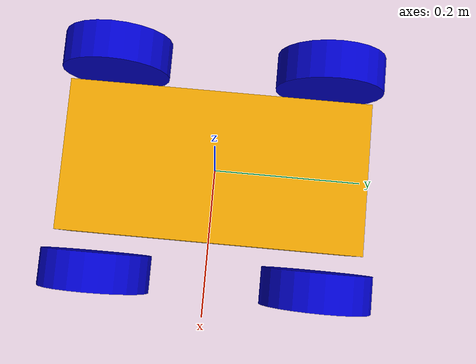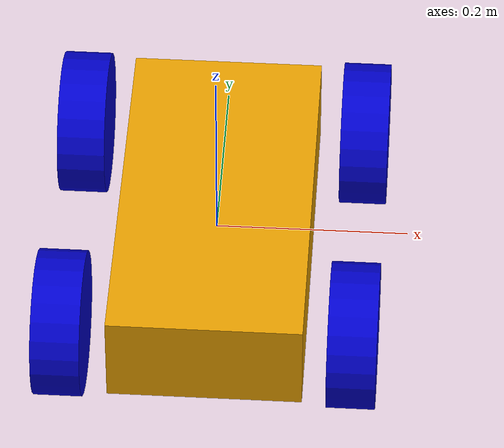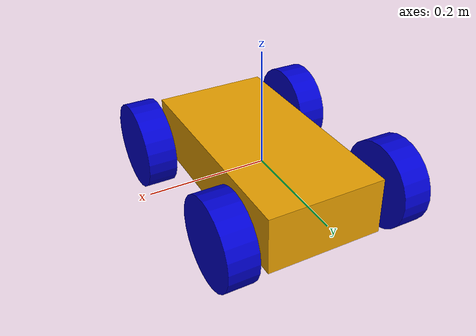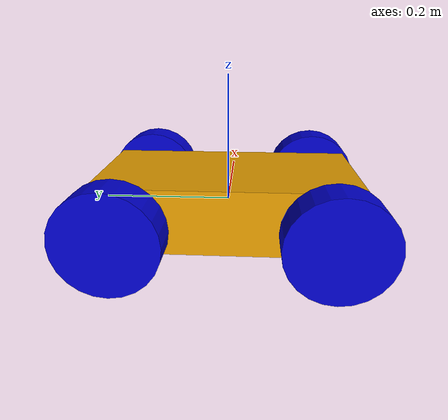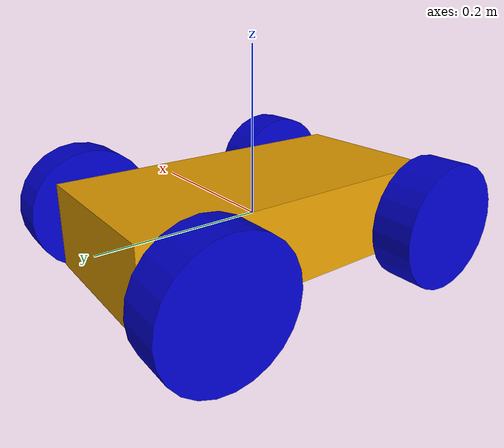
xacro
<?xml version="1.0"?>
<robot name="roscontrol" xmlns:xacro="http://www.ros.org/wiki/xacro">
  <xacro:property name="width" value="0.2"/>
  <xacro:property name="length" value="0.4"/>
  <xacro:property name="height" value="0.1"/>
  <xacro:property name="wheeldia" value="0.15"/>
  <xacro:property name="spheredia" value="0.15"/>
  <xacro:property name="pi" value="3.1415"/>

  <material name="blue">
    <color rgba="0 0 0.8 1"/>
  </material>

  <material name="red">
    <color rgba="1 0 0 1"/>
  </material>

  <xacro:macro name="robot_inertia" params="mass">
    <inertial>
      <mass value="${mass}"/>
      <inertia ixx="1.0" ixy="0.0" ixz="0.0" iyy="1.0" iyz="0.0" izz="1.0"/>
    </inertial>
  </xacro:macro>

  <link name="chasis">
    <visual>
      <geometry>
        <box size="${width} ${length} ${height}"/>
      </geometry>
    </visual>
    <xacro:robot_inertia mass="10"/>
  </link>

  <link name="left_wheel_back">
    <visual>
      <geometry>
        <cylinder length="${length/8}" radius="${wheeldia/2}"/>
      </geometry>
      <origin rpy="0 ${pi/2} 0" xyz="+0.15 0 0 "/>
      <material name="blue"/>
    </visual>
    <collision>
      <geometry>
        <cylinder length="${length/8}" radius="${wheeldia/2}"/>
      </geometry>
      <origin rpy="0 ${pi/2} 0" xyz="+0.15 0 0 "/>
    </collision>
    <xacro:robot_inertia mass="2"/>
  </link>

  <joint name="chasis_left_wheel_back" type="continuous">
    <parent link="chasis"/>
    <child link="left_wheel_back"/>
    <origin xyz="0 -0.15 0"/>
    <limit effort="30" velocity="2.0"/>
  </joint>

  <transmission name="back_left_wheel_rotation">
    <type>transmission_interface/SimpleTransmission</type>
      <actuator name="back_left_wheel_motor">
        <mechanicalReduction>1</mechanicalReduction>
      </actuator>
      <joint name="chasis_left_wheel_back">
        <hardwareInterface>VelocityJointInterface</hardwareInterface>
      </joint>
  </transmission>

  <gazebo reference="back_left_wheel_motor">
    <mu1 value="200.0"/>
    <mu2 value="100.0"/>
    <kp value="10000000.0" />
    <kd value="1.0" />
    <material>Gazebo/Blue</material>
  </gazebo>

  <link name="right_wheel_front">
    <visual>
      <geometry>
        <cylinder length="${length/8}" radius="${wheeldia/2}"/>
      </geometry>
      <origin rpy="0 ${pi/2} 0" xyz="-0.15 0 0 "/>
      <material name="blue"/>
    </visual>
    <collision>
      <geometry>
        <cylinder length="${length/8}" radius="${wheeldia/2}"/>
      </geometry>
      <origin rpy="0 ${pi/2} 0" xyz="-0.15 0 0 "/>
    </collision>
    <xacro:robot_inertia mass="2"/>
  </link>

  <joint name="chasis_right_wheel_front" type="continuous">
    <parent link="chasis"/>
    <child link="right_wheel_front"/>
    <origin xyz="0 +0.15 0"/>
    <limit effort="30" velocity="2.0"/>
  </joint>

  <transmission name="front_right_wheel_rotation">
    <type>transmission_interface/SimpleTransmission</type>
      <actuator name="front_right_wheel_motor">
        <mechanicalReduction>1</mechanicalReduction>
      </actuator>
      <joint name="chasis_right_wheel_front">
        <hardwareInterface>VelocityJointInterface</hardwareInterface>
      </joint>
  </transmission>

  <gazebo reference="front_right_wheel_motor">
    <mu1 value="200.0"/>
    <mu2 value="100.0"/>
    <kp value="10000000.0" />
    <kd value="1.0" />
    <material>Gazebo/Blue</material>
  </gazebo>

<!-- code for left wheel -->
  <link name="right_wheel_back">
    <visual>
      <geometry>
        <cylinder length="${length/8}" radius="${wheeldia/2}"/>
      </geometry>
      <origin rpy="0 ${pi/2} 0" xyz="-0.15 0 0 "/>
      <material name="blue"/>
    </visual>
    <collision>
      <geometry>
        <cylinder length="${length/8}" radius="${wheeldia/2}"/>
      </geometry>
      <origin rpy="0 ${pi/2} 0" xyz="-0.15 0 0 "/>
    </collision>
    <xacro:robot_inertia mass="2"/>
  </link>
  <joint name="chasis_right_wheel_back" type="continuous">
    <parent link="chasis"/>
    <child link="right_wheel_back"/>
    <origin xyz="0 -0.15 0"/>
    <limit effort="30" velocity="2.0"/>
  </joint>

  <transmission name="back_right_wheel_rotation">
    <type>transmission_interface/SimpleTransmission</type>
      <actuator name="back_right_wheel_motor">
        <mechanicalReduction>1</mechanicalReduction>
      </actuator>
      <joint name="chasis_right_wheel_back">
        <hardwareInterface>VelocityJointInterface</hardwareInterface>
      </joint>
  </transmission>

  <gazebo reference="back_right_wheel_motor">
    <mu1 value="200.0"/>
    <mu2 value="100.0"/>
    <kp value="10000000.0" />
    <kd value="1.0" />
    <material>Gazebo/Blue</material>
  </gazebo>

  <link name="left_wheel_front">
    <visual>
      <geometry>
        <cylinder length="${length/8}" radius="${wheeldia/2}"/>
      </geometry>
      <origin rpy="0 ${pi/2} 0" xyz="+0.15 0 0 "/>
      <material name="blue"/>
    </visual>
    <collision>
      <geometry>
        <cylinder length="${length/8}" radius="${wheeldia/2}"/>
      </geometry>
      <origin rpy="0 ${pi/2} 0" xyz="+0.15 0 0 "/>
    </collision>
    <xacro:robot_inertia mass="2"/>
  </link>

  <joint name="chasis_left_wheel_front" type="continuous">
    <parent link="chasis"/>
    <child link="left_wheel_front"/>
    <origin xyz="0 +0.15 0"/>
    <limit effort="30" velocity="2.0"/>
  </joint>

  <transmission name="front_right_wheel_rotation">
    <type>transmission_interface/SimpleTransmission</type>
      <actuator name="front_right_wheel_motor">
        <mechanicalReduction>1</mechanicalReduction>
      </actuator>
      <joint name="chasis_left_wheel_front">
        <hardwareInterface>VelocityJointInterface</hardwareInterface>
      </joint>
  </transmission>

  <gazebo reference="front_left_wheel_motor">
    <mu1 value="200.0"/>
    <mu2 value="100.0"/>
    <kp value="10000000.0" />
    <kd value="1.0" />
    <material>Gazebo/Blue</material>
  </gazebo>

  <gazebo>
    <plugin name="gazebo_ros_control" filename="libgazebo_ros_control.so">
      <robotNamespace>/</robotNamespace>
    </plugin>
  </gazebo>

</robot>
